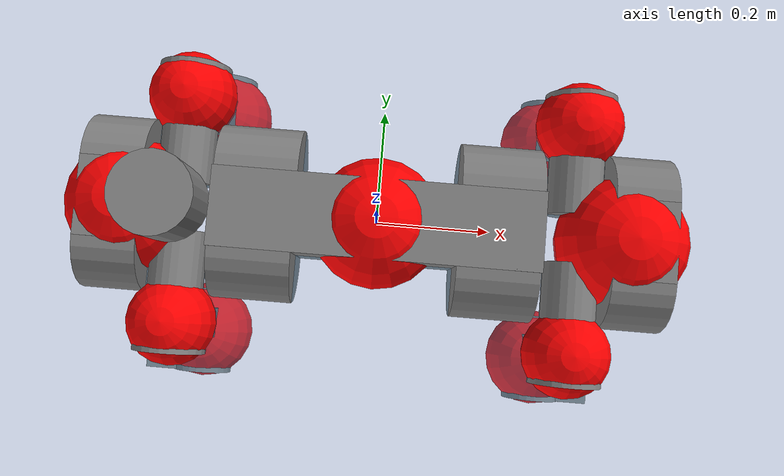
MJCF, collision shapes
<mujoco model="anymal_c">
  <compiler angle="radian" assetdir="assets" balanceinertia="true" inertiafromgeom="false"/>

  <option timestep="0.005" density="1.2" viscosity="2e-05"/>

  <size nkey="1"/>

  <visual>
    <quality shadowsize="8192"/>
    <map shadowclip="0.5"/>
  </visual>

  <default>
    <default class="/">
      <material specular="0" shininess="0.25"/>
      <geom contype="0" conaffinity="0" group="1" solref="-1000 -80"/>
      <site size="0.01 0.005 0.005" group="5"/>
      <general forcelimited="true" forcerange="-80 80" biastype="affine" gainprm="80" biasprm="0 -80 -2"/>
      <default class="anymal_c">
        <joint armature="0.01" damping="0.01" frictionloss="0.1"/>
        <default class="visual">
          <geom type="mesh" group="2"/>
          <default class="visual_zflip"/>
        </default>
        <default class="collision">
          <geom type="cylinder" group="3"/>
          <default class="foot">
            <geom size="0.03 0 0" type="sphere" condim="6" priority="1" friction="0.8 0.02 0.01" solimp="0.015 1 0.03"/>
          </default>
        </default>
      </default>
      <default class="reward_collision_sphere">
        <geom group="5" rgba="1 0 0 1"/>
      </default>
    </default>
  </default>

  <asset>
    <texture type="skybox" colorspace="auto" name="//unnamed_texture_0" builtin="gradient" rgb1="0.95 0.95 0.95" rgb2="0.95 0.95 0.95" width="100" height="600"/>
    <texture type="2d" colorspace="auto" name="texplane" builtin="checker" rgb1="0.345 0.575 0.748" rgb2="0.345 0.575 0.748" markrgb="1 1 1" width="512" height="512"/>
    <texture type="2d" colorspace="linear" name="base" file="base.png"/>
    <texture type="2d" colorspace="linear" name="top_shell" file="top_shell.png"/>
    <texture type="2d" colorspace="linear" name="bottom_shell" file="bottom_shell.png"/>
    <texture type="2d" colorspace="linear" name="remote" file="remote.png"/>
    <texture type="2d" colorspace="linear" name="hatch" file="hatch.png"/>
    <texture type="2d" colorspace="linear" name="handle" file="handle.png"/>
    <texture type="2d" colorspace="linear" name="face" file="face.png"/>
    <texture type="2d" colorspace="linear" name="battery" file="battery.png"/>
    <texture type="2d" colorspace="linear" name="lidar_cage" file="lidar_cage.png"/>
    <texture type="2d" colorspace="linear" name="depth_camera" file="depth_camera.png"/>
    <texture type="2d" colorspace="linear" name="wide_angle_camera" file="wide_angle_camera.png"/>
    <texture type="2d" colorspace="linear" name="lidar" file="lidar.png"/>
    <texture type="2d" colorspace="linear" name="drive" file="drive.png"/>
    <texture type="2d" colorspace="linear" name="hip_l" file="hip_l.png"/>
    <texture type="2d" colorspace="linear" name="shank_l" file="shank_l.png"/>
    <texture type="2d" colorspace="linear" name="foot" file="foot.png"/>
    <texture type="2d" colorspace="linear" name="thigh" file="thigh.png"/>
    <texture type="2d" colorspace="linear" name="shank_r" file="shank_r.png"/>
    <texture type="2d" colorspace="linear" name="hip_r" file="hip_r.png"/>
    <material name="MatPlane" class="/" texture="texplane" texuniform="true" texrepeat="2 2" specular="0.9" shininess="0.5"/>
    <material name="black_plastic" class="/" rgba="0.007 0.007 0.007 1"/>
    <material name="green" class="/" rgba="0.052 0.178 0.033 1"/>
    <material name="red" class="/" rgba="0.178 0.006 0.005 1"/>
    <material name="yellow" class="/" rgba="0.178 0.119 0.006 1"/>
    <material name="lwl" class="/" rgba="0.8 0.8 0.8 1"/>
    <material name="base" class="/" texture="base"/>
    <material name="top_shell" class="/" texture="top_shell"/>
    <material name="bottom_shell" class="/" texture="bottom_shell"/>
    <material name="hip_l" class="/" texture="hip_l"/>
    <material name="thigh" class="/" texture="thigh"/>
    <material name="shank_l" class="/" texture="shank_l"/>
    <material name="foot" class="/" texture="foot"/>
    <material name="hip_r" class="/" texture="hip_r"/>
    <material name="shank" class="/" texture="shank_r"/>
    <material name="hatch" class="/" texture="hatch"/>
    <material name="remote" class="/" texture="remote"/>
    <material name="handle" class="/" texture="handle"/>
    <material name="face" class="/" texture="face"/>
    <material name="depth_camera" class="/" texture="depth_camera"/>
    <material name="wide_angle_camera" class="/" texture="wide_angle_camera"/>
    <material name="battery" class="/" texture="battery"/>
    <material name="lidar_cage" class="/" texture="lidar_cage"/>
    <material name="lidar" class="/" texture="lidar"/>
    <material name="drive" class="/" texture="drive"/>
    <mesh name="base_0" class="/" file="base_0.obj"/>
    <mesh name="base_1" class="/" file="base_1.obj"/>
    <mesh name="base_2" class="/" file="base_2.obj"/>
    <mesh name="base_3" class="/" file="base_3.obj"/>
    <mesh name="base_4" class="/" file="base_4.obj"/>
    <mesh name="base_5" class="/" file="base_5.obj"/>
    <mesh name="top_shell" class="/" file="top_shell.obj"/>
    <mesh name="bottom_shell" class="/" file="bottom_shell.obj"/>
    <mesh name="remote" class="/" file="remote.obj"/>
    <mesh name="handle" class="/" file="handle.obj"/>
    <mesh name="face" class="/" file="face.obj"/>
    <mesh name="wide_angle_camera" class="/" file="wide_angle_camera.obj"/>
    <mesh name="depth_camera" class="/" file="depth_camera.obj"/>
    <mesh name="battery" class="/" file="battery.obj"/>
    <mesh name="lidar_cage" class="/" file="lidar_cage.obj"/>
    <mesh name="lidar" class="/" file="lidar.obj"/>
    <mesh name="drive" class="/" file="drive.obj"/>
    <mesh name="hip_l" class="/" file="hip_l.obj"/>
    <mesh name="thigh" class="/" file="thigh.obj"/>
    <mesh name="shank_l" class="/" file="shank_l.obj"/>
    <mesh name="foot" class="/" file="foot.obj"/>
    <mesh name="hip_r" class="/" file="hip_r.obj"/>
    <mesh name="hatch" class="/" file="hatch.obj"/>
    <mesh name="shank_r" class="/" file="shank_r.obj"/>
  </asset>

  <worldbody>
    <geom name="floor" class="/" size="100 100 0.125" type="plane" group="0" material="MatPlane"/>
    <light name="toplight_shadow" class="/" pos="0 0 5" dir="0.0990148 0.0990148 -0.990148" type="directional" ambient="0.04 0.04 0.04" diffuse="0.55 0.55 0.55" specular="0.12 0.12 0.12"/>
    <light name="toplight_fill" class="/" pos="0 0 5" dir="0.0990148 0.0990148 -0.990148" type="directional" castshadow="false" ambient="0.04 0.04 0.04" diffuse="0.3 0.3 0.3" specular="0.08 0.08 0.08"/>
    <body name="trunk" childclass="anymal_c" pos="0.000318776 0.000111953 -0.000982938" quat="1 8.37631e-06 -7.68303e-05 -0.000285145">
      <inertial pos="0.00203366 -0.000320281 0.0529244" quat="0.498111 0.500791 0.500632 0.500461" mass="18.8326" diaginertia="0.568378 0.479215 0.268848"/>
      <joint name="//unnamed_joint_0" type="free" armature="0" damping="0" frictionloss="0"/>
      <geom name="//unnamed_geom_1" class="visual" material="green" mesh="base_0"/>
      <geom name="//unnamed_geom_2" class="visual" material="yellow" mesh="base_1"/>
      <geom name="//unnamed_geom_3" class="visual" material="red" mesh="base_2"/>
      <geom name="//unnamed_geom_4" class="visual" material="black_plastic" mesh="base_3"/>
      <geom name="//unnamed_geom_5" class="visual" material="lwl" mesh="base_4"/>
      <geom name="//unnamed_geom_6" class="visual" material="base" mesh="base_5"/>
      <geom name="trunk_1" class="collision" size="0.286486 0.0691518 0.0889094" type="box"/>
      <geom name="trunk_2" class="collision" size="0.0889094 0.0716215" pos="0.212023 0.06631 0" quat="0.707107 0 0.707107 0"/>
      <geom name="trunk_3" class="collision" size="0.0889094 0.0716215" pos="-0.212023 0.06631 0" quat="0.707107 0 0.707107 0"/>
      <geom name="trunk_4" class="collision" size="0.0889094 0.0716215" pos="0.212023 -0.06631 0" quat="0.707107 0 0.707107 0"/>
      <geom name="trunk_5" class="collision" size="0.0889094 0.0716215" pos="-0.212023 -0.06631 0" quat="0.707107 0 0.707107 0"/>
      <geom name="//unnamed_geom_12" class="visual" material="top_shell" mesh="top_shell"/>
      <geom name="//unnamed_geom_13" class="visual" material="bottom_shell" mesh="bottom_shell"/>
      <geom name="//unnamed_geom_14" class="visual" material="remote" mesh="remote"/>
      <geom name="//unnamed_geom_15" class="visual" material="handle" mesh="handle"/>
      <geom name="//unnamed_geom_16" class="visual" pos="0.404062 0 0" quat="1 0 0 0" material="face" mesh="face"/>
      <geom name="trunk_6" class="collision" size="0.0543335 0.0691518 0.0889094" pos="0.457677 0 0" type="box"/>
      <geom name="//unnamed_geom_18" class="collision" size="0.0889094 0.0543335" pos="0.457677 0.06631 0" quat="0.707107 0 0.707107 0"/>
      <geom name="//unnamed_geom_19" class="collision" size="0.0889094 0.0543335" pos="0.457677 -0.06631 0" quat="0.707107 0 0.707107 0"/>
      <geom name="//unnamed_geom_20" class="visual" pos="0.450028 0 -0.0309202" quat="0.965926 0 0.258819 0" material="depth_camera" mesh="depth_camera"/>
      <geom name="//unnamed_geom_21" class="visual" pos="0.500082 0 0.0155919" material="wide_angle_camera" mesh="wide_angle_camera"/>
      <geom name="//unnamed_geom_22" class="visual_zflip" pos="-0.404062 0 0" quat="0 0 0 1" material="face" mesh="face"/>
      <geom name="trunk_7" class="collision" size="0.0543335 0.0691518 0.0889094" pos="-0.457677 0 0" quat="0 0 0 1" type="box"/>
      <geom name="//unnamed_geom_24" class="collision" size="0.0889094 0.0543335" pos="-0.457677 -0.06631 0" quat="0 -0.707107 0 0.707107"/>
      <geom name="//unnamed_geom_25" class="collision" size="0.0889094 0.0543335" pos="-0.457677 0.06631 0" quat="0 -0.707107 0 0.707107"/>
      <geom name="//unnamed_geom_26" class="visual" pos="-0.450028 0 -0.0309202" quat="0 -0.258819 0 0.965926" material="depth_camera" mesh="depth_camera"/>
      <geom name="//unnamed_geom_27" class="visual_zflip" pos="-0.500082 0 0.0155919" quat="0 0 0 1" material="wide_angle_camera" mesh="wide_angle_camera"/>
      <geom name="//unnamed_geom_28" class="visual" material="battery" mesh="battery"/>
      <geom name="//unnamed_geom_29" class="visual" pos="0 0.0720709 0.0297497" quat="0.683013 -0.183013 0.183013 0.683013" material="depth_camera" mesh="depth_camera"/>
      <geom name="//unnamed_geom_30" class="visual" pos="0 -0.0720709 0.0297497" quat="0.683013 0.183013 0.183013 -0.683013" material="depth_camera" mesh="depth_camera"/>
      <geom name="//unnamed_geom_31" class="visual" pos="-0.354834 0 0.0765534" quat="1 0 0 0" material="lidar_cage" mesh="lidar_cage"/>
      <geom name="trunk_8" class="collision" size="0.0691518 0.0592729" pos="-0.354834 0 0.139046"/>
      <geom name="//unnamed_geom_33" class="visual" pos="-0.354834 -1.08172e-05 0.148107" quat="0.707107 0 0 -0.707107" material="lidar" mesh="lidar"/>
      <geom name="//unnamed_geom_34" class="visual" pos="0.292348 0.0985512 -1.62596e-09" quat="0.258819 0.965926 0 0" material="drive" mesh="drive"/>
      <geom name="//unnamed_geom_35" class="visual" pos="0.292348 -0.0985512 1.62596e-09" quat="0.258819 -0.965926 0 0" material="drive" mesh="drive"/>
      <geom name="//unnamed_geom_36" class="visual" pos="-0.292348 0.0985512 1.62596e-09" quat="0 0 0.965926 -0.258819" material="drive" mesh="drive"/>
      <geom name="//unnamed_geom_37" class="visual" pos="-0.292348 -0.0985512 -1.62596e-09" quat="0 0 -0.965926 -0.258819" material="drive" mesh="drive"/>
      <geom name="//unnamed_geom_38" class="visual" pos="0.113079 0 0.0760327" quat="1 0 0 0" material="hatch" mesh="hatch"/>
      <geom name="//unnamed_geom_39" class="reward_collision_sphere" size="0.118546"/>
      <geom name="//unnamed_geom_40" class="reward_collision_sphere" size="0.118546" pos="0.438669 0 0"/>
      <geom name="//unnamed_geom_41" class="reward_collision_sphere" size="0.118546" pos="-0.438669 0 0"/>
      <site name="imu" pos="0.245041 0.003306 0.0499422" size="0.00987882"/>
      <camera name="track" pos="0 -1.89457 0" quat="0.707107 0.707107 0 0" mode="trackcom"/>
      <camera name="ego_camera" pos="0.438669 0 -0.0416617" quat="-0.5 -0.5 0.5 0.5"/>
      <body name="LF_HIP" pos="0.293003 0.0981788 -0.000254997" quat="0.258797 0.965932 -2.11641e-05 -3.35458e-05">
        <inertial pos="0.0549104 -0.0139798 -0.00946233" quat="-0.128 0.709782 -0.130937 0.680206" mass="2.708" diaginertia="0.00517989 0.00379297 0.00407731"/>
        <joint name="LF_HAA" pos="0 0 0" axis="0.999997 0.00140528 0.00207666" range="-0.723024 0.471146" armature="0.0099183" damping="0.0130606" frictionloss="0.0942226"/>
        <geom name="//unnamed_geom_42" class="visual" pos="0 -9.56477e-05 1.57101e-05" quat="0.258819 -0.965926 0 0" material="hip_l" mesh="hip_l"/>
        <geom name="//unnamed_geom_43" class="visual" pos="0.0583917 -0.0704249 -0.041357" quat="0.183013 -0.683013 0.683013 0.183013" material="drive" mesh="drive"/>
        <geom name="//unnamed_geom_44" class="collision" size="0.0493941 0.0691518" pos="0.0583917 -0.0113293 -0.00719186" quat="-0.353553 -0.612372 0.612372 -0.353553"/>
        <body name="LF_THIGH" pos="0.0590612 -0.0701048 -0.043733" quat="0.18292 -0.683082 0.682944 0.183102">
          <inertial pos="0.0302912 0.000291663 -0.255518" quat="0.993091 -0.00540662 -0.0812023 0.0845388" mass="2.96815" diaginertia="0.0267313 0.0227702 0.00513237"/>
          <joint name="LF_HFE" pos="0 0 0" axis="0.999999 0.00116168 0.000766083" stiffness="0.00248669" range="-3.12431 3.1375" armature="0.0101393" damping="0.00523586" frictionloss="0.0987912"/>
          <geom name="//unnamed_geom_45" class="visual" pos="0.000547809 8.63218e-07 0" quat="0.707107 0 0 -0.707107" material="thigh" mesh="thigh"/>
          <geom name="//unnamed_geom_46" class="collision" size="0.0642124 0.0395153" pos="0.0389928 0 0" quat="0.5 0.5 -0.5 -0.5"/>
          <geom name="//unnamed_geom_47" class="collision" size="0.0370456 0.0296365 0.139602" pos="0.0292446 0 -0.147185" quat="0.707107 0 0 -0.707107" type="box"/>
          <geom name="//unnamed_geom_48" class="visual" pos="0.0977743 0 -0.29684" quat="1 0 0 0" material="drive" mesh="drive"/>
          <geom name="//unnamed_geom_49" class="collision" size="0.0493941 0.0691518" pos="0.029537 0 -0.29684" quat="0.707107 0 0.707107 0"/>
          <geom name="//unnamed_geom_50" class="reward_collision_sphere" size="0.0790306" pos="0.0243705 0 0"/>
          <body name="LF_SHANK" pos="0.0980069 -0.000697174 -0.296934" quat="1 -3.52586e-05 -2.58453e-05 -1.57227e-05">
            <inertial pos="0.00390957 -0.0587074 -0.0840723" quat="0.993002 -0.115441 -0.00242395 -0.0248007" mass="0.570704" diaginertia="0.00892221 0.0070766 0.00137395"/>
            <joint name="LF_KFE" pos="0 0 0" axis="0.999998 0.00190428 0.000852866" range="-3.16654 3.12085" armature="0.00968794" damping="0.00740651" frictionloss="0.104325"/>
            <geom name="//unnamed_geom_51" class="visual" pos="0.000178628 0.000952456 0" quat="0.707107 0 0 -0.707107" material="shank_l" mesh="shank_l"/>
            <geom name="LF_kfe_act" class="collision" size="0.0592729 0.0197576" pos="0.0194964 0 0" quat="0.5 0.5 -0.5 -0.5"/>
            <geom name="//unnamed_geom_53" class="collision" size="0.0568023 0.033341 0.0187698" pos="0.0194964 -0.054468 0" quat="0.5 0.5 -0.5 -0.5" type="box"/>
            <geom name="//unnamed_geom_54" class="visual" pos="0.0127213 -0.0830068 -0.35201" quat="0.382683 0 0 -0.92388" material="foot" mesh="foot"/>
            <geom name="LF_calf" class="collision" size="0.0172879 0.13954" pos="0.0127214 -0.0833137 -0.176005" quat="0.707107 0 0 -0.707107"/>
            <geom name="LF_foot" class="foot" size="0.0295654" pos="0.0127214 -0.0833137 -0.328576" quat="0.707107 0 0 -0.707107"/>
            <geom name="//unnamed_geom_57" class="reward_collision_sphere" size="0.0987882" pos="-0.0487409 0 0"/>
            <geom name="//unnamed_geom_58" class="reward_collision_sphere" size="0.0493941" pos="0.0127214 -0.0833137 -0.328576"/>
            <site name="LF_foot" class="foot" pos="0.0127214 -0.0833137 -0.328576" quat="0.707107 0 0 -0.707107" size="0.00987882"/>
          </body>
        </body>
      </body>
      <body name="RF_HIP" pos="0.293678 -0.0991667 -0.000204747" quat="0.25846 -0.966022 -0.000292729 0.000267221">
        <inertial pos="0.0559052 0.0148193 -0.0089611" quat="0.136969 0.676915 0.132437 0.710975" mass="2.71947" diaginertia="0.00519642 0.00375921 0.00405846"/>
        <joint name="RF_HAA" pos="0 0 0" axis="0.999983 0.00230602 -0.00532782" range="-0.512123 0.739041" armature="0.0100004" damping="0.01484" frictionloss="0.0947084"/>
        <geom name="//unnamed_geom_59" class="visual" pos="0 9.56469e-05 1.571e-05" quat="0.258819 0.965926 0 0" material="hip_r" mesh="hip_r"/>
        <geom name="//unnamed_geom_60" class="visual" pos="0.0583917 0.0704249 -0.041357" quat="0.183013 0.683013 0.683013 -0.183013" material="drive" mesh="drive"/>
        <geom name="//unnamed_geom_61" class="collision" size="0.0493941 0.0691518" pos="0.0583917 0.0113293 -0.00719186" quat="-0.353553 0.612372 0.612372 0.353553"/>
        <body name="RF_THIGH" pos="0.0586317 0.0695699 -0.0434918" quat="0.183347 0.683159 0.682791 -0.182957">
          <inertial pos="0.0309424 0.000179085 -0.25579" quat="0.992759 -0.00549712 -0.0808994 0.0886275" mass="2.94166" diaginertia="0.0265004 0.022831 0.00507462"/>
          <joint name="RF_HFE" pos="0 0 0" axis="1 0.000812541 -0.000319298" stiffness="0.00249722" range="-3.13998 3.15791" armature="0.010272" damping="0.00018714" frictionloss="0.100279"/>
          <geom name="//unnamed_geom_62" class="visual" pos="0.000547809 8.63218e-07 0" quat="0.707107 0 0 -0.707107" material="thigh" mesh="thigh"/>
          <geom name="//unnamed_geom_63" class="collision" size="0.0642124 0.0395153" pos="0.0389928 0 0" quat="0.5 0.5 0.5 0.5"/>
          <geom name="//unnamed_geom_64" class="collision" size="0.0370456 0.0296365 0.139602" pos="0.0292446 0 -0.147185" quat="0.707107 0 0 0.707107" type="box"/>
          <geom name="//unnamed_geom_65" class="visual" pos="0.0977743 0 -0.29684" quat="1 0 0 0" material="drive" mesh="drive"/>
          <geom name="//unnamed_geom_66" class="collision" size="0.0493941 0.0691518" pos="0.029537 0 -0.29684" quat="0.707107 0 0.707107 0"/>
          <geom name="//unnamed_geom_67" class="reward_collision_sphere" size="0.0790306" pos="0.0243705 0 0"/>
          <body name="RF_SHANK" pos="0.0966641 0.000465788 -0.296588" quat="1 0.000208244 -4.15888e-05 -7.02154e-05">
            <inertial pos="0.00516079 0.0576301 -0.0841093" quat="0.993488 0.110463 0.000434264 0.0279142" mass="0.560293" diaginertia="0.00892023 0.0070199 0.00137779"/>
            <joint name="RF_KFE" pos="0 0 0" axis="0.999992 -0.00249631 0.00308907" range="-3.1357 3.13049" armature="0.00982295" damping="0.00855107" frictionloss="0.103137"/>
            <geom name="//unnamed_geom_68" class="visual" pos="0.000178627 -0.000952454 0" quat="0.707107 0 0 0.707107" material="shank" mesh="shank_r"/>
            <geom name="RF_kfe_act" class="collision" size="0.0592729 0.0197576" pos="0.0194964 0 0" quat="0.5 0.5 0.5 0.5"/>
            <geom name="//unnamed_geom_70" class="collision" size="0.0568023 0.033341 0.0187698" pos="0.0194964 0.054468 0" quat="0.5 0.5 0.5 0.5" type="box"/>
            <geom name="//unnamed_geom_71" class="visual" pos="0.0127214 0.0830068 -0.35201" quat="0.382683 0 0 0.92388" material="foot" mesh="foot"/>
            <geom name="RF_calf" class="collision" size="0.0172879 0.13954" pos="0.0127214 0.0833137 -0.176005" quat="0.707107 0 0 0.707107"/>
            <geom name="RF_foot" class="foot" size="0.0293815" pos="0.0127214 0.0833137 -0.328576" quat="0.707107 0 0 0.707107"/>
            <geom name="//unnamed_geom_74" class="reward_collision_sphere" size="0.0987882" pos="-0.0487409 0 0"/>
            <geom name="//unnamed_geom_75" class="reward_collision_sphere" size="0.0493941" pos="0.0127214 0.0833137 -0.328576"/>
            <site name="RF_foot" class="foot" pos="0.0127214 0.0833137 -0.328576" quat="0.707107 0 0 0.707107" size="0.00987882"/>
          </body>
        </body>
      </body>
      <body name="LH_HIP" pos="-0.291984 0.0991876 0.000235579" quat="5.16453e-05 3.60497e-05 0.965911 -0.258873">
        <inertial pos="0.0553989 0.0137857 -0.00976686" quat="0.13427 0.681046 0.127123 0.708511" mass="2.70571" diaginertia="0.00527333 0.00376763 0.00409977"/>
        <joint name="LH_HAA" pos="0 0 0" axis="0.999996 -0.0016693 0.00242384" range="-0.498945 0.733995" armature="0.00988032" damping="0.00720906" frictionloss="0.0995966"/>
        <geom name="//unnamed_geom_76" class="visual" pos="0 9.56469e-05 1.571e-05" quat="-0.258819 -0.965926 0 0" material="hip_r" mesh="hip_r"/>
        <geom name="//unnamed_geom_77" class="visual" pos="0.0583917 0.0704249 -0.041357" quat="0.183013 0.683013 0.683013 -0.183013" material="drive" mesh="drive"/>
        <geom name="//unnamed_geom_78" class="collision" size="0.0493941 0.0691518" pos="0.0583917 0.0113293 -0.00719186" quat="-0.353553 0.612372 0.612372 0.353553"/>
        <body name="LH_THIGH" pos="0.0578944 0.0685766 -0.042417" quat="0.183065 0.683042 0.682966 -0.183026">
          <inertial pos="0.0313685 0.000436769 -0.25686" quat="0.992771 -0.00506004 -0.0806366 0.0887593" mass="3.02367" diaginertia="0.0272969 0.0233234 0.00517159"/>
          <joint name="LH_HFE" pos="0 0 0" axis="0.999985 0.00494318 0.00217352" range="-3.12592 3.13398" armature="0.00978326" damping="0.00114269" frictionloss="0.0949004"/>
          <geom name="//unnamed_geom_79" class="visual" pos="0.000547809 8.63218e-07 0" quat="0.707107 0 0 -0.707107" material="thigh" mesh="thigh"/>
          <geom name="//unnamed_geom_80" class="collision" size="0.0642124 0.0395153" pos="0.0389928 0 0" quat="0.5 0.5 -0.5 -0.5"/>
          <geom name="//unnamed_geom_81" class="collision" size="0.0370456 0.0296365 0.139602" pos="0.0292446 0 -0.147185" quat="0.707107 0 0 -0.707107" type="box"/>
          <geom name="//unnamed_geom_82" class="visual" pos="0.0977743 0 -0.29684" quat="1 0 0 0" material="drive" mesh="drive"/>
          <geom name="//unnamed_geom_83" class="collision" size="0.0493941 0.0691518" pos="0.029537 0 -0.29684" quat="0.707107 0 0.707107 0"/>
          <geom name="//unnamed_geom_84" class="reward_collision_sphere" size="0.0790306" pos="0.0243705 0 0"/>
          <body name="LH_SHANK" pos="0.0983546 -0.000660691 -0.297541" quat="1 -4.98611e-06 9.66638e-06 -1.22453e-06">
            <inertial pos="0.00444394 0.0571639 -0.0851788" quat="0.99305 0.115171 0.000429188 0.0242513" mass="0.569491" diaginertia="0.00901094 0.00718335 0.00137041"/>
            <joint name="LH_KFE" pos="0 0 0" axis="0.999998 -0.000214462 0.00175237" range="-3.13575 3.11324" armature="0.0100537" damping="0.000779032" frictionloss="0.099511"/>
            <geom name="//unnamed_geom_85" class="visual" pos="0.000178627 -0.000952454 0" quat="-0.707107 0 0 -0.707107" material="shank" mesh="shank_r"/>
            <geom name="LH_kfe_act" class="collision" size="0.0592729 0.0197576" pos="0.0194964 0 0" quat="0.5 0.5 -0.5 -0.5"/>
            <geom name="//unnamed_geom_87" class="collision" size="0.0568023 0.033341 0.0187698" pos="0.0194964 0.054468 0" quat="0.5 0.5 -0.5 -0.5" type="box"/>
            <geom name="//unnamed_geom_88" class="visual" pos="0.0127214 0.0830068 -0.35201" quat="-0.382683 0 0 -0.92388" material="foot" mesh="foot"/>
            <geom name="LH_calf" class="collision" size="0.0172879 0.13954" pos="0.0127214 0.0833137 -0.176005" quat="0.707107 0 0 -0.707107"/>
            <geom name="LH_foot" class="foot" size="0.0301528" pos="0.0127214 0.0833137 -0.328576" quat="0.707107 0 0 -0.707107"/>
            <geom name="//unnamed_geom_91" class="reward_collision_sphere" size="0.0987882" pos="-0.0487409 0 0"/>
            <geom name="//unnamed_geom_92" class="reward_collision_sphere" size="0.0493941" pos="0.0127214 0.0833137 -0.328576"/>
            <site name="LH_foot" class="foot" pos="0.0127214 0.0833137 -0.328576" quat="0.707107 0 0 -0.707107" size="0.00987882"/>
          </body>
        </body>
      </body>
      <body name="RH_HIP" pos="-0.290994 -0.098379 0.000224679" quat="-0.000108729 2.29253e-05 -0.96594 -0.258765">
        <inertial pos="0.0554541 -0.013698 -0.00887225" quat="-0.127979 0.71079 -0.13699 0.677962" mass="2.66595" diaginertia="0.00526544 0.00379492 0.00403578"/>
        <joint name="RH_HAA" pos="0 0 0" axis="0.999966 -0.00692868 -0.00451201" range="-0.704979 0.490845" armature="0.00990103" damping="0.0103626" frictionloss="0.105181"/>
        <geom name="//unnamed_geom_93" class="visual" pos="0 -9.56477e-05 1.57101e-05" quat="-0.258819 0.965926 0 0" material="hip_l" mesh="hip_l"/>
        <geom name="//unnamed_geom_94" class="visual" pos="0.0583917 -0.0704249 -0.041357" quat="-0.183013 0.683013 -0.683013 -0.183013" material="drive" mesh="drive"/>
        <geom name="//unnamed_geom_95" class="collision" size="0.0493941 0.0691518" pos="0.0583917 -0.0113293 -0.00719186" quat="0.353553 0.612372 -0.612372 0.353553"/>
        <body name="RH_THIGH" pos="0.0581414 -0.0687834 -0.0432475" quat="-0.183112 0.683013 -0.683066 -0.182712">
          <inertial pos="0.0294798 0.00092653 -0.255935" quat="0.993341 -0.00662926 -0.0819051 0.0807491" mass="2.91945" diaginertia="0.0266902 0.0227695 0.00515805"/>
          <joint name="RH_HFE" pos="0 0 0" axis="0.999993 0.00350911 0.00111477" range="-3.13894 3.15193" armature="0.00998803" damping="0.0134292" frictionloss="0.097884"/>
          <geom name="//unnamed_geom_96" class="visual" pos="0.000547809 8.63218e-07 0" quat="0.707107 0 0 -0.707107" material="thigh" mesh="thigh"/>
          <geom name="//unnamed_geom_97" class="collision" size="0.0642124 0.0395153" pos="0.0389928 0 0" quat="0.5 0.5 0.5 0.5"/>
          <geom name="//unnamed_geom_98" class="collision" size="0.0370456 0.0296365 0.139602" pos="0.0292446 0 -0.147185" quat="0.707107 0 0 0.707107" type="box"/>
          <geom name="//unnamed_geom_99" class="visual" pos="0.0977743 0 -0.29684" quat="1 0 0 0" material="drive" mesh="drive"/>
          <geom name="//unnamed_geom_100" class="collision" size="0.0493941 0.0691518" pos="0.029537 0 -0.29684" quat="0.707107 0 0.707107 0"/>
          <geom name="//unnamed_geom_101" class="reward_collision_sphere" size="0.0790306" pos="0.0243705 0 0"/>
          <body name="RH_SHANK" pos="0.0965237 -0.000165927 -0.296646" quat="1 -5.6224e-05 0.000366065 -0.00051165">
            <inertial pos="0.00513502 -0.0580457 -0.0841311" quat="0.993161 -0.114297 -0.000424983 -0.0238198" mass="0.557427" diaginertia="0.00879212 0.00688734 0.00134604"/>
            <joint name="RH_KFE" pos="0 0 0" axis="0.999949 0.00964122 0.00312937" range="-3.11926 3.12997" armature="0.00998156" damping="0.0028674" frictionloss="0.0981722"/>
            <geom name="//unnamed_geom_102" class="visual" pos="0.000178628 0.000952456 0" quat="0.707107 0 0 -0.707107" material="shank_l" mesh="shank_l"/>
            <geom name="RH_kfe_act" class="collision" size="0.0592729 0.0197576" pos="0.0194964 0 0" quat="0.5 0.5 0.5 0.5"/>
            <geom name="//unnamed_geom_104" class="collision" size="0.0568023 0.033341 0.0187698" pos="0.0194964 -0.054468 0" quat="0.5 0.5 0.5 0.5" type="box"/>
            <geom name="//unnamed_geom_105" class="visual" pos="0.0127213 -0.0830068 -0.35201" quat="0.382683 0 0 -0.92388" material="foot" mesh="foot"/>
            <geom name="RH_calf" class="collision" size="0.0172879 0.13954" pos="0.0127214 -0.0833137 -0.176005" quat="0.707107 0 0 0.707107"/>
            <geom name="RH_foot" class="foot" size="0.0292542" pos="0.0127214 -0.0833137 -0.328576" quat="0.707107 0 0 0.707107"/>
            <geom name="//unnamed_geom_108" class="reward_collision_sphere" size="0.0987882" pos="-0.0487409 0 0"/>
            <geom name="//unnamed_geom_109" class="reward_collision_sphere" size="0.0493941" pos="0.0127214 -0.0833137 -0.328576"/>
            <site name="RH_foot" class="foot" pos="0.0127214 -0.0833137 -0.328576" quat="0.707107 0 0 0.707107" size="0.00987882"/>
          </body>
        </body>
      </body>
    </body>
  </worldbody>

  <contact>
    <pair class="/" geom1="floor" geom2="LF_foot" name="//unnamed_contact_0"/>
    <pair class="/" geom1="floor" geom2="RF_foot" name="//unnamed_contact_1"/>
    <pair class="/" geom1="floor" geom2="LH_foot" name="//unnamed_contact_2"/>
    <pair class="/" geom1="floor" geom2="RH_foot" name="//unnamed_contact_3"/>
  </contact>

  <actuator>
    <general name="LF_HAA" class="/" joint="LF_HAA" forcerange="-79.0289 79.0289" gainprm="80.3405" biasprm="0 -80.3405 -1.97402"/>
    <general name="LF_HFE" class="/" joint="LF_HFE" forcerange="-80.493 80.493" gainprm="80.3405" biasprm="0 -80.3405 -1.97402"/>
    <general name="LF_KFE" class="/" joint="LF_KFE" forcerange="-76.6212 76.6212" gainprm="80.3405" biasprm="0 -80.3405 -1.97402"/>
    <general name="RF_HAA" class="/" joint="RF_HAA" forcerange="-78.1912 78.1912" gainprm="80.3405" biasprm="0 -80.3405 -1.97402"/>
    <general name="RF_HFE" class="/" joint="RF_HFE" forcerange="-77.2503 77.2503" gainprm="80.3405" biasprm="0 -80.3405 -1.97402"/>
    <general name="RF_KFE" class="/" joint="RF_KFE" forcerange="-78.471 78.471" gainprm="80.3405" biasprm="0 -80.3405 -1.97402"/>
    <general name="LH_HAA" class="/" joint="LH_HAA" forcerange="-78.9754 78.9754" gainprm="80.3405" biasprm="0 -80.3405 -1.97402"/>
    <general name="LH_HFE" class="/" joint="LH_HFE" forcerange="-76.9763 76.9763" gainprm="80.3405" biasprm="0 -80.3405 -1.97402"/>
    <general name="LH_KFE" class="/" joint="LH_KFE" forcerange="-81.3781 81.3781" gainprm="80.3405" biasprm="0 -80.3405 -1.97402"/>
    <general name="RH_HAA" class="/" joint="RH_HAA" forcerange="-79.3515 79.3515" gainprm="80.3405" biasprm="0 -80.3405 -1.97402"/>
    <general name="RH_HFE" class="/" joint="RH_HFE" forcerange="-80.1368 80.1368" gainprm="80.3405" biasprm="0 -80.3405 -1.97402"/>
    <general name="RH_KFE" class="/" joint="RH_KFE" forcerange="-76.4622 76.4622" gainprm="80.3405" biasprm="0 -80.3405 -1.97402"/>
  </actuator>

  <sensor>
    <gyro site="imu" name="imu_angular_velocity"/>
    <velocimeter site="imu" name="imu_linear_velocity"/>
    <framelinvel objtype="site" objname="LF_foot" name="LF_foot_global_linear_velocity"/>
    <framelinvel objtype="site" objname="RF_foot" name="RF_foot_global_linear_velocity"/>
    <framelinvel objtype="site" objname="LH_foot" name="LH_foot_global_linear_velocity"/>
    <framelinvel objtype="site" objname="RH_foot" name="RH_foot_global_linear_velocity"/>
  </sensor>

  <keyframe>
    <key name="home" qpos="0 0 0.55 1 0 0 0 0 0.4 -0.8 0 -0.4 0.8 0 -0.4 0.8 0 0.4 -0.8"/>
  </keyframe>
</mujoco>
